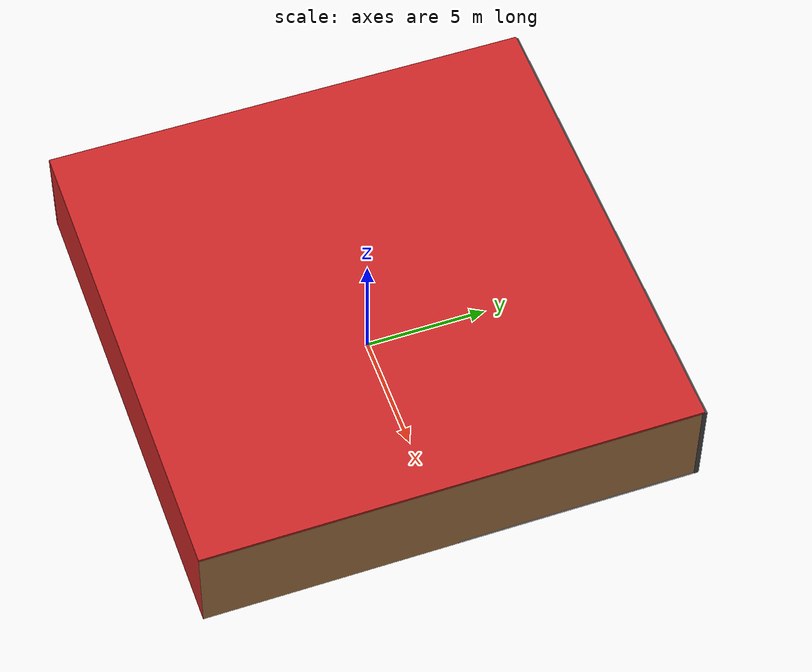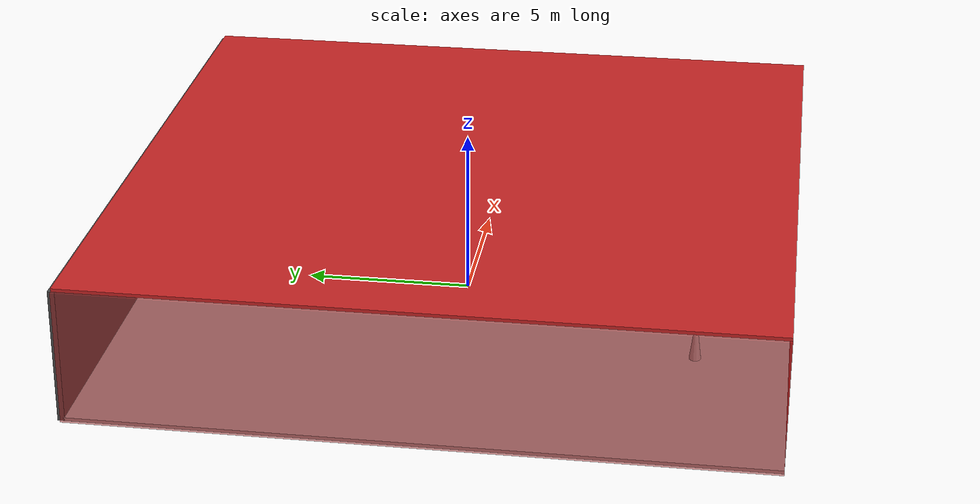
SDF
<sdf version="1.4">
 <world name="default">
  <physics type="ode">
   <max_step_size>0.001</max_step_size>
   <real_time_factor>1</real_time_factor>
   <real_time_update_rate>1000</real_time_update_rate>
   <gravity>0 0 -9.8</gravity>
  </physics>
  <scene><ambient>0.4 0.4 0.4 1</ambient><background>0.7 0.7 0.7 1</background><shadows>1</shadows></scene>
  <model name="Surrounding">
   <static>1</static>
   <link name="Ceiling">
    <collision name="Ceiling_Collision"><geometry><box><size>20 20 0.1</size></box></geometry></collision>
    <visual name="Ceiling_Visual">
     <geometry><box><size>20 20 0.1</size></box></geometry>
     <material>
      <script><uri>file://media/materials/scripts/gazebo.material</uri><name>Gazebo/RedGlow</name></script>
     </material>
    </visual>
    <pose>0 0 4.05 0 0 0</pose>
   </link>
   <link name="Wall_South">
    <collision name="Wall_South_Collision">
     <geometry><box><size>20 0 4</size></box></geometry>
     <pose>0 0 2 0 -0 0</pose>
    </collision>
    <visual name="Wall_South_Visual">
     <pose>0 0 2 0 -0 0</pose>
     <geometry><box><size>20 0 4</size></box></geometry>
     <material>
      <script><uri>file://media/materials/scripts/gazebo.material</uri><name>Gazebo/Red</name></script>
     </material>
    </visual>
    <velocity_decay><linear>0</linear><angular>0</angular></velocity_decay>
    <pose>0 -10 0 0 -0 0</pose>
   </link>
   <link name="Wall_East">
    <collision name="Wall_21_Collision">
     <geometry><box><size>20 0 4</size></box></geometry>
     <pose>0 0 2 0 -0 0</pose>
    </collision>
    <visual name="Wall_21_Visual">
     <pose>0 0 2 0 -0 0</pose>
     <geometry><box><size>20 0 4</size></box></geometry>
     <material>
      <script><uri>file://media/materials/scripts/gazebo.material</uri><name>Gazebo/WoodPallet</name></script>
     </material>
    </visual>
    <velocity_decay><linear>0</linear><angular>0</angular></velocity_decay>
    <pose>10 0 0 0 -0 1.5708</pose>
   </link>
   <link name="Wall_North">
    <collision name="Wall_22_Collision">
     <geometry><box><size>20 0.2 4</size></box></geometry>
     <pose>0 0 2 0 -0 0</pose>
    </collision>
    <visual name="Wall_22_Visual">
     <pose>0 0 2 0 -0 0</pose>
     <geometry><box><size>20 0.2 4</size></box></geometry>
     <material>
      <script><uri>file://media/materials/scripts/gazebo.material</uri><name>Gazebo/DarkGrey</name></script>
     </material>
    </visual>
    <velocity_decay><linear>0</linear><angular>0</angular></velocity_decay>
    <pose>0 10 0 0 -0 0</pose>
   </link>
   <link name="Wall_West">
    <collision name="Wall_23_Collision">
     <geometry><box><size>20 0.2 4</size></box></geometry>
     <pose>0 0 2 0 -0 0</pose>
    </collision>
    <visual name="Wall_23_Visual">
     <pose>0 0 2 0 -0 0</pose>
     <geometry><box><size>20 0.2 4</size></box></geometry>
     <material>
      <script><uri>file://media/materials/scripts/gazebo.material</uri><name>Gazebo/RedTransparent</name></script>
     </material>
    </visual>
    <velocity_decay><linear>0</linear><angular>0</angular></velocity_decay>
    <pose>-10 0 0 0 0 -1.5708</pose>
   </link>
   <link name="Ground_link">
    <collision name="collision">
     <pose>0 0 .05 0 -0 0</pose>
     <geometry><box><size>20 20 0.1</size></box></geometry>
    </collision>
    <visual name="visual">
     <pose>0 0 .05 0 -0 0</pose>
     <geometry><box><size>20 20 0.1</size></box></geometry>
     <material>
      <script><uri>file://media/materials/scripts/gazebo.material</uri><name>Gazebo/JointAnchor</name></script>
     </material>
    </visual>
   </link>
   <static>1</static>
  </model>
  <spherical_coordinates>
   <surface_model>EARTH_WGS84</surface_model>
   <latitude_deg>0</latitude_deg>
   <longitude_deg>0</longitude_deg>
   <elevation>0</elevation>
   <heading_deg>0</heading_deg>
  </spherical_coordinates>
  <light name="lightball_0" type="diffuse">
   <diffuse>0.8 0.8 0.8 1</diffuse>
   <specular>0.2 0.2 0.2 1</specular>
   <attenuation>
    <range>100</range>
    <constant>0.7</constant>
    <linear>0.01</linear>
    <quadratic>0.001</quadratic>
   </attenuation>
   <direction>-0.5 0.1 -0.9</direction>
   <pose>-5.64835160119 -7.75847940892 0.892690361313 0 0 0</pose>
  </light>
  <light name="lightball_1" type="diffuse">
   <diffuse>0.8 0.8 0.8 1</diffuse>
   <specular>0.2 0.2 0.2 1</specular>
   <attenuation>
    <range>100</range>
    <constant>0.7</constant>
    <linear>0.01</linear>
    <quadratic>0.001</quadratic>
   </attenuation>
   <direction>-0.5 0.1 -0.9</direction>
   <pose>-3.64356940006 -6.77417455282 0.676674927409 0 0 0</pose>
  </light>
  <light name="lightball_2" type="diffuse">
   <diffuse>0.8 0.8 0.8 1</diffuse>
   <specular>0.2 0.2 0.2 1</specular>
   <attenuation>
    <range>100</range>
    <constant>0.7</constant>
    <linear>0.01</linear>
    <quadratic>0.001</quadratic>
   </attenuation>
   <direction>-0.5 0.1 -0.9</direction>
   <pose>-0.024952056307 -0.890396863322 1.83542265758 0 0 0</pose>
  </light>
  <light name="lightball_3" type="diffuse">
   <diffuse>0.8 0.8 0.8 1</diffuse>
   <specular>0.2 0.2 0.2 1</specular>
   <attenuation>
    <range>100</range>
    <constant>0.7</constant>
    <linear>0.01</linear>
    <quadratic>0.001</quadratic>
   </attenuation>
   <direction>-0.5 0.1 -0.9</direction>
   <pose>5.91530567333 5.41667849017 3.03066647938 0 0 0</pose>
  </light>
  <light name="lightball_4" type="diffuse">
   <diffuse>0.8 0.8 0.8 1</diffuse>
   <specular>0.2 0.2 0.2 1</specular>
   <attenuation>
    <range>100</range>
    <constant>0.7</constant>
    <linear>0.01</linear>
    <quadratic>0.001</quadratic>
   </attenuation>
   <direction>-0.5 0.1 -0.9</direction>
   <pose>1.54771681167 -1.35990047427 3.40395671124 0 0 0</pose>
  </light>
  <light name="lightball_5" type="diffuse">
   <diffuse>0.8 0.8 0.8 1</diffuse>
   <specular>0.2 0.2 0.2 1</specular>
   <attenuation>
    <range>100</range>
    <constant>0.7</constant>
    <linear>0.01</linear>
    <quadratic>0.001</quadratic>
   </attenuation>
   <direction>-0.5 0.1 -0.9</direction>
   <pose>-9.84434577163 -2.15577339803 1.85737524524 0 0 0</pose>
  </light>
  <light name="lightball_6" type="diffuse">
   <diffuse>0.8 0.8 0.8 1</diffuse>
   <specular>0.2 0.2 0.2 1</specular>
   <attenuation>
    <range>100</range>
    <constant>0.7</constant>
    <linear>0.01</linear>
    <quadratic>0.001</quadratic>
   </attenuation>
   <direction>-0.5 0.1 -0.9</direction>
   <pose>4.4108092976 9.61876239162 3.63984912073 0 0 0</pose>
  </light>
  <light name="lightball_7" type="diffuse">
   <diffuse>0.8 0.8 0.8 1</diffuse>
   <specular>0.2 0.2 0.2 1</specular>
   <attenuation>
    <range>100</range>
    <constant>0.7</constant>
    <linear>0.01</linear>
    <quadratic>0.001</quadratic>
   </attenuation>
   <direction>-0.5 0.1 -0.9</direction>
   <pose>-4.02184336107 -8.48875826796 2.21805590949 0 0 0</pose>
  </light>
  <light name="lightball_8" type="diffuse">
   <diffuse>0.8 0.8 0.8 1</diffuse>
   <specular>0.2 0.2 0.2 1</specular>
   <attenuation>
    <range>100</range>
    <constant>0.7</constant>
    <linear>0.01</linear>
    <quadratic>0.001</quadratic>
   </attenuation>
   <direction>-0.5 0.1 -0.9</direction>
   <pose>-5.96039667094 -7.26372223943 2.77226934701 0 0 0</pose>
  </light>
  <light name="lightball_9" type="diffuse">
   <diffuse>0.8 0.8 0.8 1</diffuse>
   <specular>0.2 0.2 0.2 1</specular>
   <attenuation>
    <range>100</range>
    <constant>0.7</constant>
    <linear>0.01</linear>
    <quadratic>0.001</quadratic>
   </attenuation>
   <direction>-0.5 0.1 -0.9</direction>
   <pose>-1.02131215137 -0.169935160385 2.91623413639 0 0 0</pose>
  </light>
  <light name="lightball_10" type="diffuse">
   <diffuse>0.8 0.8 0.8 1</diffuse>
   <specular>0.2 0.2 0.2 1</specular>
   <attenuation>
    <range>100</range>
    <constant>0.7</constant>
    <linear>0.01</linear>
    <quadratic>0.001</quadratic>
   </attenuation>
   <direction>-0.5 0.1 -0.9</direction>
   <pose>-9.0195832301 3.16682201666 3.49103824231 0 0 0</pose>
  </light>
  <light name="lightball_11" type="diffuse">
   <diffuse>0.8 0.8 0.8 1</diffuse>
   <specular>0.2 0.2 0.2 1</specular>
   <attenuation>
    <range>100</range>
    <constant>0.7</constant>
    <linear>0.01</linear>
    <quadratic>0.001</quadratic>
   </attenuation>
   <direction>-0.5 0.1 -0.9</direction>
   <pose>-4.22099658832 8.75897268547 1.85458361521 0 0 0</pose>
  </light>
  <light name="lightball_12" type="diffuse">
   <diffuse>0.8 0.8 0.8 1</diffuse>
   <specular>0.2 0.2 0.2 1</specular>
   <attenuation>
    <range>100</range>
    <constant>0.7</constant>
    <linear>0.01</linear>
    <quadratic>0.001</quadratic>
   </attenuation>
   <direction>-0.5 0.1 -0.9</direction>
   <pose>4.5328043176 -8.62265401926 3.48664532919 0 0 0</pose>
  </light>
  <include>
   <uri>model://construction_cone</uri>
   <pose>-3.96719072216 -7.273802241 0 0 0 2.44159041635</pose>
  </include>
  <include>
   <uri>model://construction_cone</uri>
   <pose>4.98892815337 -6.84227266004 0 0 0 0.765164525512</pose>
  </include>
  <include>
   <uri>model://robocup_3Dsim_goal</uri>
   <pose>4.65224456244 -5.56968601298 0 0 0 0.360679956687</pose>
  </include>
 </world>
</sdf>

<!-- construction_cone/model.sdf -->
<sdf version="1.5">
  <model name="Construction Cone">
    <link name="link">
      <collision name="collision">
        <geometry>
          <mesh>
            <scale>10 10 10</scale>
            <uri>file://isr-testbed/construction_cone/meshes/construction_cone.dae</uri>
          </mesh>
        </geometry>
      </collision>
      <visual name="visual">
        <geometry>
          <mesh>
            <scale>10 10 10</scale>
            <uri>file://isr-testbed/construction_cone/meshes/construction_cone.dae</uri>
          </mesh>
        </geometry>
      </visual>
    </link>
  </model>
</sdf>

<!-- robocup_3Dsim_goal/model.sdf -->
<sdf version="1.5">
  <model name="robocup_3d_goal">
    <static>true</static>
    <link name="left_post">
      <pose>0 1.05 0.45 0 0 0</pose>
      <collision name="collision">
        <geometry>
          <cylinder>
            <radius>0.05</radius>
            <length>0.9</length>
          </cylinder>
        </geometry>
      </collision>
      <visual name="visual">
        <geometry>
          <cylinder>
            <radius>0.05</radius>
            <length>0.9</length>
          </cylinder>
        </geometry>
        <material>
          <script>
            <uri>file://media/materials/scripts/gazebo.material</uri>
            <name>Gazebo/ZincYellow</name>
          </script>
        </material>
      </visual>
    </link>
    <link name="left_support_horiz_lower">
      <pose>0.30 1.05 0.01 0 0 0</pose>
      <collision name="collision">
        <geometry>
          <box>
            <size>0.50 0.02 0.02</size>
          </box>
        </geometry>
      </collision>
      <visual name="visual">
        <geometry>
          <box>
            <size>0.50 0.02 0.02</size>
          </box>
        </geometry>
        <material>
          <script>
            <uri>file://media/materials/scripts/gazebo.material</uri>
            <name>Gazebo/White</name>
          </script>
        </material>
      </visual>
    </link>
    <link name="left_support_horiz_upper">
      <pose>0.30 1.05 0.79 0 0 0</pose>
      <collision name="collision">
        <geometry>
          <box>
            <size>0.50 0.02 0.02</size>
          </box>
        </geometry>
      </collision>
      <visual name="visual">
        <geometry>
          <box>
            <size>0.50 0.02 0.02</size>
          </box>
        </geometry>
        <material>
          <script>
            <uri>file://media/materials/scripts/gazebo.material</uri>
            <name>Gazebo/White</name>
          </script>
        </material>
      </visual>
    </link>
    <link name="left_support_vertical">
      <pose>0.56 1.05 0.4 0 1.5708 0</pose>
      <collision name="collision">
        <geometry>
          <box>
            <size>0.80 0.02 0.02</size>
          </box>
        </geometry>
      </collision>
      <visual name="visual">
        <geometry>
          <box>
            <size>0.80 0.02 0.02</size>
          </box>
        </geometry>
        <material>
          <script>
            <uri>file://media/materials/scripts/gazebo.material</uri>
            <name>Gazebo/White</name>
          </script>
        </material>
      </visual>
    </link>
    <link name="right_support_horiz_lower">
      <pose>0.30 -1.05 0.01 0 0 0</pose>
      <collision name="collision">
        <geometry>
          <box>
            <size>0.50 0.02 0.02</size>
          </box>
        </geometry>
      </collision>
      <visual name="visual">
        <geometry>
          <box>
            <size>0.50 0.02 0.02</size>
          </box>
        </geometry>
        <material>
          <script>
            <uri>file://media/materials/scripts/gazebo.material</uri>
            <name>Gazebo/White</name>
          </script>
        </material>
      </visual>
    </link>
    <link name="right_support_horiz_upper">
      <pose>0.30 -1.05 0.79 0 0 0</pose>
      <collision name="collision">
        <geometry>
          <box>
            <size>0.50 0.02 0.02</size>
          </box>
        </geometry>
      </collision>
      <visual name="visual">
        <geometry>
          <box>
            <size>0.50 0.02 0.02</size>
          </box>
        </geometry>
        <material>
          <script>
            <uri>file://media/materials/scripts/gazebo.material</uri>
            <name>Gazebo/White</name>
          </script>
        </material>
      </visual>
    </link>
    <link name="right_support_vertical">
      <pose>0.56 -1.05 0.4 0 1.5708 0</pose>
      <collision name="collision">
        <geometry>
          <box>
            <size>0.80 0.02 0.02</size>
          </box>
        </geometry>
      </collision>
      <visual name="visual">
        <geometry>
          <box>
            <size>0.80 0.02 0.02</size>
          </box>
        </geometry>
        <material>
          <script>
            <uri>file://media/materials/scripts/gazebo.material</uri>
            <name>Gazebo/White</name>
          </script>
        </material>
      </visual>
    </link>
    <link name="center_support_horiz_lower">
      <pose>0.56 0 0.01 0 1.5708 0</pose>
      <collision name="collision">
        <geometry>
          <box>
            <size>0.02 2.08 0.02</size>
          </box>
        </geometry>
      </collision>
      <visual name="visual">
        <geometry>
          <box>
            <size>0.02 2.08 0.02</size>
          </box>
        </geometry>
        <material>
          <script>
            <uri>file://media/materials/scripts/gazebo.material</uri>
            <name>Gazebo/White</name>
          </script>
        </material>
      </visual>
    </link>
    <link name="center_support_horiz_upper">
      <pose>0.56 0 0.79 0 1.5708 0</pose>
      <collision name="collision">
        <geometry>
          <box>
            <size>0.02 2.08 0.02</size>
          </box>
        </geometry>
      </collision>
      <visual name="visual">
        <geometry>
          <box>
            <size>0.02 2.08 0.02</size>
          </box>
        </geometry>
        <material>
          <script>
            <uri>file://media/materials/scripts/gazebo.material</uri>
            <name>Gazebo/White</name>
          </script>
        </material>
      </visual>
    </link>
    <link name="right_post">
      <pose>0 -1.05 0.45 0 0 0</pose>
      <collision name="collision">
        <geometry>
          <cylinder>
            <radius>0.05</radius>
            <length>0.9</length>
          </cylinder>
        </geometry>
      </collision>
      <visual name="visual">
        <geometry>
          <cylinder>
            <radius>0.05</radius>
            <length>0.9</length>
          </cylinder>
        </geometry>
        <material>
          <script>
            <uri>file://media/materials/scripts/gazebo.material</uri>
            <name>Gazebo/ZincYellow</name>
          </script>
        </material>
      </visual>
    </link>
    <link name="crossbar">
      <pose>0 0 0.85 1.57 1.57 0</pose>
      <collision name="collision">
        <geometry>
          <cylinder>
            <radius>0.05</radius>
            <length>2.0</length>
          </cylinder>
        </geometry>
      </collision>
      <visual name="visual">
        <geometry>
          <cylinder>
            <radius>0.05</radius>
            <length>2.0</length>
          </cylinder>
        </geometry>
        <material>
          <script>
            <uri>file://media/materials/scripts/gazebo.material</uri>
            <name>Gazebo/ZincYellow</name>
          </script>
        </material>
      </visual>
    </link>
    <link name="center_net">
      <pose>0.56 0 0.40 0 0 0</pose>
      <collision name="collision">
        <geometry>
          <box>
            <size>0.01 2.1 0.80</size>
          </box>
        </geometry>
      </collision>
      <visual name="visual">
        <geometry>
          <box>
            <size>0.01 2.1 0.80</size>
          </box>
        </geometry>
        <material>
          <script>
            <uri>model://../model_source/models/robocup09_spl_field/materials/scripts/</uri>
            <uri>model://../model_source/models/robocup09_spl_field/materials/textures/</uri>
            <name>RoboCup/Net</name>
          </script>
        </material>
      </visual>
    </link>
    <link name="left_net">
      <pose>0.30 1.05 0.40 0 0 0</pose>
      <collision name="collision">
        <geometry>
          <box>
            <size>0.50 0.01 0.76</size>
          </box>
        </geometry>
      </collision>
      <visual name="visual">
        <geometry>
          <box>
            <size>0.50 0.01 0.76</size>
          </box>
        </geometry>
        <material>
          <script>
            <uri>model://../model_source/models/robocup09_spl_field/materials/scripts/</uri>
            <uri>model://../model_source/models/robocup09_spl_field/materials/textures/</uri>
            <name>RoboCup/Net</name>
          </script>
        </material>
      </visual>
    </link>
    <link name="right_net">
      <pose>0.30 -1.05 0.40 0 0 0</pose>
      <collision name="collision">
        <geometry>
          <box>
            <size>0.50 0.01 0.76</size>
          </box>
        </geometry>
      </collision>
      <visual name="visual">
        <geometry>
          <box>
            <size>0.50 0.01 0.76</size>
          </box>
        </geometry>
        <material>
          <script>
            <uri>model://../model_source/models/robocup09_spl_field/materials/scripts/</uri>
            <uri>model://../model_source/models/robocup09_spl_field/materials/textures/</uri>
            <name>RoboCup/Net</name>
          </script>
        </material>
      </visual>
    </link>
  </model>
</sdf>
